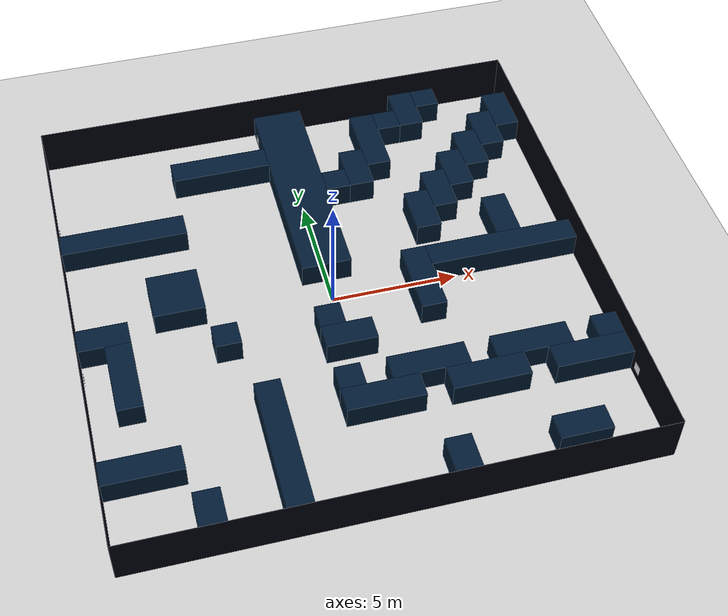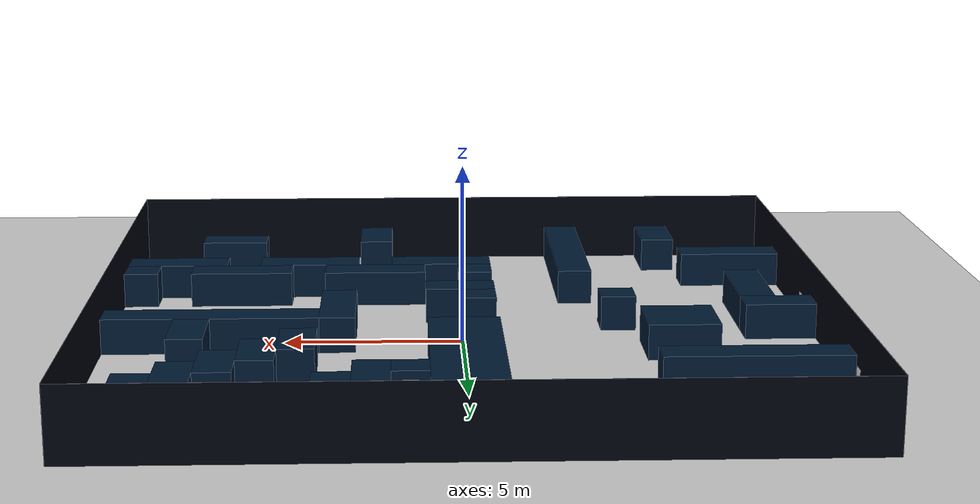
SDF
<?xml version="1.0"?>
<sdf version='1.8' xmlns:experimental="http://sdformat.org/schemas/1.7/experimental">
    <world name='april_maze'>
        <physics name='1ms' type='ignored'>
            <max_step_size>0.003</max_step_size>
            <real_time_factor>1</real_time_factor>
            <real_time_update_rate>1000</real_time_update_rate>
        </physics>

        <plugin name="gz::sim::systems::Physics" filename="gz-sim-physics-system" />
        <plugin name="gz::sim::systems::UserCommands" filename="gz-sim-user-commands-system" />
        <plugin name="gz::sim::systems::SceneBroadcaster" filename="gz-sim-scene-broadcaster-system" />
        <plugin name="gz::sim::systems::Contact" filename="gz-sim-contact-system" />

        <light name='sun' type='directional'>
            <cast_shadows>1</cast_shadows>
            <pose>0 0 10 0 -0 0</pose>
            <diffuse>0.8 0.8 0.8 1</diffuse>
            <specular>0.2 0.2 0.2 1</specular>
            <attenuation>
                <range>1000</range>
                <constant>0.90000000000000002</constant>
                <linear>0.01</linear>
                <quadratic>0.001</quadratic>
            </attenuation>
            <direction>-0.5 0.1 -0.9</direction>
            <spot>
                <inner_angle>0</inner_angle>
                <outer_angle>0</outer_angle>
                <falloff>0</falloff>
            </spot>
        </light>
        <gravity>0 0 -9.8</gravity>
        <magnetic_field>6e-06 2.3e-05 -4.2e-05</magnetic_field>
        <atmosphere type='adiabatic' />
        <scene>
            <ambient>0.4 0.4 0.4 1</ambient>
            <background>0.7 0.7 0.7 1</background>
            <shadows>1</shadows>
        </scene>
        <include>
            <name>ground_plane</name>
            <uri>model://ground_plane</uri>
        </include>

        <include>
            <name>maze</name>
            <uri>model://maze</uri>
        </include>

        <!-- AprilTag panels via parameterized includes -->
        <include>
          <name>tag36_11_00000</name>
          <uri>model://apriltag_panel</uri>
          <pose>-9.94 -2 0.6 0 -1.5708 -3.141</pose>
          <experimental:params>
            <visual element_id="panel::front_vis" action="modify">
              <material>
                <pbr>
                  <metal>
                    <albedo_map>textures/apriltags/tag36_11_00000.png</albedo_map>
                  </metal>
                </pbr>
              </material>
            </visual>
          </experimental:params>
        </include>

        <include>
          <name>tag36_11_00001</name>
          <uri>model://apriltag_panel</uri>
          <pose>-9.94 5.5 0.6 0 -1.5708 3.141</pose>
          <experimental:params>
            <visual element_id="panel::front_vis" action="modify">
              <material>
                <pbr>
                  <metal>
                    <albedo_map>textures/apriltags/tag36_11_00001.png</albedo_map>
                  </metal>
                </pbr>
              </material>
            </visual>
          </experimental:params>
        </include>

        <include>
          <name>tag36_11_00002</name>
          <uri>model://apriltag_panel</uri>
          <pose>9.94 -6.5 0.6 0 1.5708 3.141</pose>
          <experimental:params>
            <visual element_id="panel::front_vis" action="modify">
              <material>
                <pbr>
                  <metal>
                    <albedo_map>textures/apriltags/tag36_11_00002.png</albedo_map>
                  </metal>
                </pbr>
              </material>
            </visual>
          </experimental:params>
        </include>

        <include>
          <name>tag36_11_00003</name>
          <uri>model://apriltag_panel</uri>
          <pose>7.05 9.5 0.6 0 1.5708 0.0</pose>
          <experimental:params>
            <visual element_id="panel::front_vis" action="modify">
              <material>
                <pbr>
                  <metal>
                    <albedo_map>textures/apriltags/tag36_11_00003.png</albedo_map>
                  </metal>
                </pbr>
              </material>
            </visual>
          </experimental:params>
        </include>

        <include>
          <name>tag36_11_00004</name>
          <uri>model://apriltag_panel</uri>
          <pose>1.50 6.10 0.6 0 1.5708 1.5708</pose>
          <experimental:params>
            <visual element_id="panel::front_vis" action="modify">
              <material>
                <pbr>
                  <metal>
                    <albedo_map>textures/apriltags/tag36_11_00004.png</albedo_map>
                  </metal>
                </pbr>
              </material>
            </visual>
          </experimental:params>
        </include>

        <include>
          <name>tag36_11_00005</name>
          <uri>model://apriltag_panel</uri>
          <pose>-1.06 9 0.6 0 -1.5708 0</pose>
          <experimental:params>
            <visual element_id="panel::front_vis" action="modify">
              <material>
                <pbr>
                  <metal>
                    <albedo_map>textures/apriltags/tag36_11_00005.png</albedo_map>
                  </metal>
                </pbr>
              </material>
            </visual>
          </experimental:params>
        </include>

    </world>
</sdf>

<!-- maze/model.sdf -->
<sdf version='1.8'>
  <model name='maze'>
    <static>true</static>

    <!-- Border walls (z offset 1.0 to place base at ground) -->
    <link name='border_wall1'>
      <pose>-10.005 0 1 0 0 0</pose>
      <collision name='border_wall1_collision'>
        <geometry>
          <box>
            <size>0.01 20 2</size>
          </box>
        </geometry>
      </collision>
      <visual name='border_wall1_visual'>
        <geometry>
          <box>
            <size>0.01 20 2</size>
          </box>
        </geometry>
        <material>
          <ambient>0.1 0.1 0.1 1</ambient>
          <diffuse>0 0.01 0.05 1</diffuse>
          <specular>0 0.01 0.05 1</specular>
        </material>
      </visual>
    </link>

    <link name='border_wall2'>
      <pose>10.005 0 1 0 0 0</pose>
      <collision name='border_wall2_collision'>
        <geometry>
          <box>
            <size>0.01 20 2</size>
          </box>
        </geometry>
      </collision>
      <visual name='border_wall2_visual'>
        <geometry>
          <box>
            <size>0.01 20 2</size>
          </box>
        </geometry>
        <material>
          <ambient>0.1 0.1 0.1 1</ambient>
          <diffuse>0 0.01 0.05 1</diffuse>
          <specular>0 0.01 0.05 1</specular>
        </material>
      </visual>
    </link>

    <link name='border_wall3'>
      <pose>0 10.005 1 0 0 0</pose>
      <collision name='border_wall3_collision'>
        <geometry>
          <box>
            <size>20 0.01 2</size>
          </box>
        </geometry>
      </collision>
      <visual name='border_wall3_visual'>
        <geometry>
          <box>
            <size>20 0.01 2</size>
          </box>
        </geometry>
        <material>
          <ambient>0.1 0.1 0.1 1</ambient>
          <diffuse>0 0.01 0.05 1</diffuse>
          <specular>0 0.01 0.05 1</specular>
        </material>
      </visual>
    </link>

    <link name='border_wall4'>
      <pose>0 -10.005 1 0 0 0</pose>
      <collision name='border_wall4_collision'>
        <geometry>
          <box>
            <size>20 0.01 2</size>
          </box>
        </geometry>
      </collision>
      <visual name='border_wall4_visual'>
        <geometry>
          <box>
            <size>20 0.01 2</size>
          </box>
        </geometry>
        <material>
          <ambient>0.1 0.1 0.1 1</ambient>
          <diffuse>0 0.01 0.05 1</diffuse>
          <specular>0 0.01 0.05 1</specular>
        </material>
      </visual>
    </link>

    <!-- Obstacles (z offset 0.5 to place base at ground) -->
    <link name='wall1'>
      <pose>-6.5 -9 0.5 0 0 0</pose>
      <collision name='wall1_collision'>
        <geometry>
          <box>
            <size>1 2 1</size>
          </box>
        </geometry>
      </collision>
      <visual name='wall1_visual'>
        <geometry>
          <box>
            <size>1 2 1</size>
          </box>
        </geometry>
        <material>
          <ambient>0.1 0.1 0.1 1</ambient>
          <diffuse>0 0.1 0.2 1</diffuse>
          <specular>0 0.01 0.05 1</specular>
        </material>
      </visual>
    </link>

    <link name='wall2'>
      <pose>-8.5 -6.5 0.5 0 0 0</pose>
      <collision name='wall2_collision'>
        <geometry>
          <box>
            <size>3 1 1</size>
          </box>
        </geometry>
      </collision>
      <visual name='wall2_visual'>
        <geometry>
          <box>
            <size>3 1 1</size>
          </box>
        </geometry>
        <material>
          <ambient>0.1 0.1 0.1 1</ambient>
          <diffuse>0 0.1 0.2 1</diffuse>
          <specular>0 0.01 0.05 1</specular>
        </material>
      </visual>
    </link>

    <link name='wall3'>
      <pose>-3.5 -7 0.5 0 0 0</pose>
      <collision name='wall3_collision'>
        <geometry>
          <box>
            <size>1 6 1</size>
          </box>
        </geometry>
      </collision>
      <visual name='wall3_visual'>
        <geometry>
          <box>
            <size>1 6 1</size>
          </box>
        </geometry>
      <material>
          <ambient>0.1 0.1 0.1 1</ambient>
          <diffuse>0 0.1 0.2 1</diffuse>
          <specular>0 0.01 0.05 1</specular>
        </material>
      </visual>
    </link>

    <link name='wall4'>
      <pose>2.5 -9 0.5 0 0 0</pose>
      <collision name='wall4_collision'>
        <geometry>
          <box>
            <size>1 2 1</size>
          </box>
        </geometry>
      </collision>
      <visual name='wall4_visual'>
        <geometry>
          <box>
            <size>1 2 1</size>
          </box>
        </geometry>
        <material>
          <ambient>0.1 0.1 0.1 1</ambient>
          <diffuse>0 0.1 0.2 1</diffuse>
          <specular>0 0.01 0.05 1</specular>
        </material>
      </visual>
    </link>

    <link name='wall5'>
      <pose>7 -8.5 0.5 0 0 0</pose>
      <collision name='wall5_collision'>
        <geometry>
          <box>
            <size>2 1 1</size>
          </box>
        </geometry>
      </collision>
      <visual name='wall5_visual'>
        <geometry>
          <box>
            <size>2 1 1</size>
          </box>
        </geometry>
        <material>
          <ambient>0.1 0.1 0.1 1</ambient>
          <diffuse>0 0.1 0.2 1</diffuse>
          <specular>0 0.01 0.05 1</specular>
        </material>
      </visual>
    </link>

    <link name='wall6'>
      <pose>-9 -0.5 0.5 0 0 0</pose>
      <collision name='wall6_collision'>
        <geometry>
          <box>
            <size>2 1 1</size>
          </box>
        </geometry>
      </collision>
      <visual name='wall6_visual'>
        <geometry>
          <box>
            <size>2 1 1</size>
          </box>
        </geometry>
        <material>
          <ambient>0.1 0.1 0.1 1</ambient>
          <diffuse>0 0.1 0.2 1</diffuse>
          <specular>0 0.01 0.05 1</specular>
        </material>
      </visual>
    </link>

    <link name='wall7'>
      <pose>-8.5 -2.5 0.5 0 0 0</pose>
      <collision name='wall7_collision'>
        <geometry>
          <box>
            <size>1 3 1</size>
          </box>
        </geometry>
      </collision>
      <visual name='wall7_visual'>
        <geometry>
          <box>
            <size>1 3 1</size>
          </box>
        </geometry>
        <material>
          <ambient>0.1 0.1 0.1 1</ambient>
          <diffuse>0 0.1 0.2 1</diffuse>
          <specular>0 0.01 0.05 1</specular>
        </material>
      </visual>
    </link>

    <link name='wall8'>
      <pose>-4.5 -1.5 0.5 0 0 0</pose>
      <collision name='wall8_collision'>
        <geometry>
          <box>
            <size>1 1 1</size>
          </box>
        </geometry>
      </collision>
      <visual name='wall8_visual'>
        <geometry>
          <box>
            <size>1 1 1</size>
          </box>
        </geometry>
        <material>
          <ambient>0.1 0.1 0.1 1</ambient>
          <diffuse>0 0.1 0.2 1</diffuse>
          <specular>0 0.01 0.05 1</specular>
        </material>
      </visual>
    </link>

    <link name='wall9'>
      <pose>-6 1 0.5 0 0 0</pose>
      <collision name='wall9_collision'>
        <geometry>
          <box>
            <size>2 2 1</size>
          </box>
        </geometry>
      </collision>
      <visual name='wall9_visual'>
        <geometry>
          <box>
            <size>2 2 1</size>
          </box>
        </geometry>
        <material>
          <ambient>0.1 0.1 0.1 1</ambient>
          <diffuse>0 0.1 0.2 1</diffuse>
          <specular>0 0.01 0.05 1</specular>
        </material>
      </visual>
    </link>

    <link name='wall10'>
      <pose>-7.5 4.5 0.5 0 0 0</pose>
      <collision name='wall10_collision'>
        <geometry>
          <box>
            <size>5 1 1</size>
          </box>
        </geometry>
      </collision>
      <visual name='wall10_visual'>
        <geometry>
          <box>
            <size>5 1 1</size>
          </box>
        </geometry>
        <material>
          <ambient>0.1 0.1 0.1 1</ambient>
          <diffuse>0 0.1 0.2 1</diffuse>
          <specular>0 0.01 0.05 1</specular>
        </material>
      </visual>
    </link>

    <link name='wall11'>
      <pose>-3 7.5 0.5 0 0 0</pose>
      <collision name='wall11_collision'>
        <geometry>
          <box>
            <size>4 1 1</size>
          </box>
        </geometry>
      </collision>
      <visual name='wall11_visual'>
        <geometry>
          <box>
            <size>4 1 1</size>
          </box>
        </geometry>
        <material>
          <ambient>0.1 0.1 0.1 1</ambient>
          <diffuse>0 0.1 0.2 1</diffuse>
          <specular>0 0.01 0.05 1</specular>
        </material>
      </visual>
    </link>

    <link name='wall12'>
      <pose>0 5.5 0.5 0 0 0</pose>
      <collision name='wall12_collision'>
        <geometry>
          <box>
            <size>2 9 1</size>
          </box>
        </geometry>
      </collision>
      <visual name='wall12_visual'>
        <geometry>
          <box>
            <size>2 9 1</size>
          </box>
        </geometry>
        <material>
          <ambient>0.1 0.1 0.1 1</ambient>
          <diffuse>0 0.1 0.2 1</diffuse>
          <specular>0 0.01 0.05 1</specular>
        </material>
      </visual>
    </link>

    <link name='wall13'>
      <pose>0 -2.5 0.5 0 0 0</pose>
      <collision name='wall13_collision'>
        <geometry>
          <box>
            <size>2 1 1</size>
          </box>
        </geometry>
      </collision>
      <visual name='wall13_visual'>
        <geometry>
          <box>
            <size>2 1 1</size>
          </box>
        </geometry>
        <material>
          <ambient>0.1 0.1 0.1 1</ambient>
          <diffuse>0 0.1 0.2 1</diffuse>
          <specular>0 0.01 0.05 1</specular>
        </material>
      </visual>
    </link>

    <link name='wall14'>
      <pose>-0.5 -1.5 0.5 0 0 0</pose>
      <collision name='wall14_collision'>
        <geometry>
          <box>
            <size>1 1 1</size>
          </box>
        </geometry>
      </collision>
      <visual name='wall14_visual'>
        <geometry>
          <box>
            <size>1 1 1</size>
          </box>
        </geometry>
        <material>
          <ambient>0.1 0.1 0.1 1</ambient>
          <diffuse>0 0.1 0.2 1</diffuse>
          <specular>0 0.01 0.05 1</specular>
        </material>
      </visual>
    </link>

    <link name='wall15'>
      <pose>-0.5 -4.5 0.5 0 0 0</pose>
      <collision name='wall15_collision'>
        <geometry>
          <box>
            <size>1 1 1</size>
          </box>
        </geometry>
      </collision>
      <visual name='wall15_visual'>
        <geometry>
          <box>
            <size>1 1 1</size>
          </box>
        </geometry>
        <material>
          <ambient>0.1 0.1 0.1 1</ambient>
          <diffuse>0 0.1 0.2 1</diffuse>
          <specular>0 0.01 0.05 1</specular>
        </material>
      </visual>
    </link>

    <link name='wall16'>
      <pose>0.5 -5.5 0.5 0 0 0</pose>
      <collision name='wall16_collision'>
        <geometry>
          <box>
            <size>3 1 1</size>
          </box>
        </geometry>
      </collision>
      <visual name='wall16_visual'>
        <geometry>
          <box>
            <size>3 1 1</size>
          </box>
        </geometry>
        <material>
          <ambient>0.1 0.1 0.1 1</ambient>
          <diffuse>0 0.1 0.2 1</diffuse>
          <specular>0 0.01 0.05 1</specular>
        </material>
      </visual>
    </link>

    <link name='wall17'>
      <pose>2.5 -4.5 0.5 0 0 0</pose>
      <collision name='wall17_collision'>
        <geometry>
          <box>
            <size>3 1 1</size>
          </box>
        </geometry>
      </collision>
      <visual name='wall17_visual'>
        <geometry>
          <box>
            <size>3 1 1</size>
          </box>
        </geometry>
        <material>
          <ambient>0.1 0.1 0.1 1</ambient>
          <diffuse>0 0.1 0.2 1</diffuse>
          <specular>0 0.01 0.05 1</specular>
        </material>
      </visual>
    </link>

    <link name='wall18'>
      <pose>4.5 -5.5 0.5 0 0 0</pose>
      <collision name='wall18_collision'>
        <geometry>
          <box>
            <size>3 1 1</size>
          </box>
        </geometry>
      </collision>
      <visual name='wall18_visual'>
        <geometry>
          <box>
            <size>3 1 1</size>
          </box>
        </geometry>
        <material>
          <ambient>0.1 0.1 0.1 1</ambient>
          <diffuse>0 0.1 0.2 1</diffuse>
          <specular>0 0.01 0.05 1</specular>
        </material>
      </visual>
    </link>

    <link name='wall19'>
      <pose>6.5 -4.5 0.5 0 0 0</pose>
      <collision name='wall19_collision'>
        <geometry>
          <box>
            <size>3 1 1</size>
          </box>
        </geometry>
      </collision>
      <visual name='wall19_visual'>
        <geometry>
          <box>
            <size>3 1 1</size>
          </box>
        </geometry>
        <material>
          <ambient>0.1 0.1 0.1 1</ambient>
          <diffuse>0 0.1 0.2 1</diffuse>
          <specular>0 0.01 0.05 1</specular>
        </material>
      </visual>
    </link>

    <link name='wall20'>
      <pose>8.5 -5.5 0.5 0 0 0</pose>
      <collision name='wall20_collision'>
        <geometry>
          <box>
            <size>3 1 1</size>
          </box>
        </geometry>
      </collision>
      <visual name='wall20_visual'>
        <geometry>
          <box>
            <size>3 1 1</size>
          </box>
        </geometry>
        <material>
          <ambient>0.1 0.1 0.1 1</ambient>
          <diffuse>0 0.1 0.2 1</diffuse>
          <specular>0 0.01 0.05 1</specular>
        </material>
      </visual>
    </link>

    <link name='wall21'>
      <pose>9.5 -4.5 0.5 0 0 0</pose>
      <collision name='wall21_collision'>
        <geometry>
          <box>
            <size>1 1 1</size>
          </box>
        </geometry>
      </collision>
      <visual name='wall21_visual'>
        <geometry>
          <box>
            <size>1 1 1</size>
          </box>
        </geometry>
        <material>
          <ambient>0.1 0.1 0.1 1</ambient>
          <diffuse>0 0.1 0.2 1</diffuse>
          <specular>0 0.01 0.05 1</specular>
        </material>
      </visual>
    </link>

    <link name='wall22'>
      <pose>3.5 -0.5 0.5 0 0 0</pose>
      <collision name='wall22_collision'>
        <geometry>
          <box>
            <size>1 3 1</size>
          </box>
        </geometry>
      </collision>
      <visual name='wall22_visual'>
        <geometry>
          <box>
            <size>1 3 1</size>
          </box>
        </geometry>
        <material>
          <ambient>0.1 0.1 0.1 1</ambient>
          <diffuse>0 0.1 0.2 1</diffuse>
          <specular>0 0.01 0.05 1</specular>
        </material>
      </visual>
    </link>

    <link name='wall23'>
      <pose>7 0.5 0.5 0 0 0</pose>
      <collision name='wall23_collision'>
        <geometry>
          <box>
            <size>6 1 1</size>
          </box>
        </geometry>
      </collision>
      <visual name='wall23_visual'>
        <geometry>
          <box>
            <size>6 1 1</size>
          </box>
        </geometry>
        <material>
          <ambient>0.1 0.1 0.1 1</ambient>
          <diffuse>0 0.1 0.2 1</diffuse>
          <specular>0 0.01 0.05 1</specular>
        </material>
      </visual>
    </link>

    <link name='wall24'>
      <pose>7.5 2 0.5 0 0 0</pose>
      <collision name='wall24_collision'>
        <geometry>
          <box>
            <size>1 2 1</size>
          </box>
        </geometry>
      </collision>
      <visual name='wall24_visual'>
        <geometry>
          <box>
            <size>1 2 1</size>
          </box>
        </geometry>
        <material>
          <ambient>0.1 0.1 0.1 1</ambient>
          <diffuse>0 0.1 0.2 1</diffuse>
          <specular>0 0.01 0.05 1</specular>
        </material>
      </visual>
    </link>

    <link name='wall25'>
      <pose>1.5 5.5 0.5 0 0 0</pose>
      <collision name='wall25_collision'>
        <geometry>
          <box>
            <size>1 1 1</size>
          </box>
        </geometry>
      </collision>
      <visual name='wall25_visual'>
        <geometry>
          <box>
            <size>1 1 1</size>
          </box>
        </geometry>
        <material>
          <ambient>0.1 0.1 0.1 1</ambient>
          <diffuse>0 0.1 0.2 1</diffuse>
          <specular>0 0.01 0.05 1</specular>
        </material>
      </visual>
    </link>

    <link name='wall26'>
      <pose>2.5 6 0.5 0 0 0</pose>
      <collision name='wall26_collision'>
        <geometry>
          <box>
            <size>1 2 1</size>
          </box>
        </geometry>
      </collision>
      <visual name='wall26_visual'>
        <geometry>
          <box>
            <size>1 2 1</size>
          </box>
        </geometry>
        <material>
          <ambient>0.1 0.1 0.1 1</ambient>
          <diffuse>0 0.1 0.2 1</diffuse>
          <specular>0 0.01 0.05 1</specular>
        </material>
      </visual>
    </link>

    <link name='wall27'>
      <pose>3.5 7.5 0.5 0 0 0</pose>
      <collision name='wall27_collision'>
        <geometry>
          <box>
            <size>1 3 1</size>
          </box>
        </geometry>
      </collision>
      <visual name='wall27_visual'>
        <geometry>
          <box>
            <size>1 3 1</size>
          </box>
        </geometry>
        <material>
          <ambient>0.1 0.1 0.1 1</ambient>
          <diffuse>0 0.1 0.2 1</diffuse>
          <specular>0 0.01 0.05 1</specular>
        </material>
      </visual>
    </link>

    <link name='wall28'>
      <pose>4.5 8.5 0.5 0 0 0</pose>
      <collision name='wall28_collision'>
        <geometry>
          <box>
            <size>1 1 1</size>
          </box>
        </geometry>
      </collision>
      <visual name='wall28_visual'>
        <geometry>
          <box>
            <size>1 1 1</size>
          </box>
        </geometry>
        <material>
          <ambient>0.1 0.1 0.1 1</ambient>
          <diffuse>0 0.1 0.2 1</diffuse>
          <specular>0 0.01 0.05 1</specular>
        </material>
      </visual>
    </link>

    <link name='wall29'>
      <pose>5.5 9 0.5 0 0 0</pose>
      <collision name='wall29_collision'>
        <geometry>
          <box>
            <size>1 2 1</size>
          </box>
        </geometry>
      </collision>
      <visual name='wall29_visual'>
        <geometry>
          <box>
            <size>1 2 1</size>
          </box>
        </geometry>
        <material>
          <ambient>0.1 0.1 0.1 1</ambient>
          <diffuse>0 0.1 0.2 1</diffuse>
          <specular>0 0.01 0.05 1</specular>
        </material>
      </visual>
    </link>

    <link name='wall30'>
      <pose>6.5 9.5 0.5 0 0 0</pose>
      <collision name='wall30_collision'>
        <geometry>
          <box>
            <size>1 1 1</size>
          </box>
        </geometry>
      </collision>
      <visual name='wall30_visual'>
        <geometry>
          <box>
            <size>1 1 1</size>
          </box>
        </geometry>
        <material>
          <ambient>0.1 0.1 0.1 1</ambient>
          <diffuse>0 0.1 0.2 1</diffuse>
          <specular>0 0.01 0.05 1</specular>
        </material>
      </visual>
    </link>

    <link name='wall31'>
      <pose>4.5 3 0.5 0 0 0</pose>
      <collision name='wall31_collision'>
        <geometry>
          <box>
            <size>1 2 1</size>
          </box>
        </geometry>
      </collision>
      <visual name='wall31_visual'>
        <geometry>
          <box>
            <size>1 2 1</size>
          </box>
        </geometry>
        <material>
          <ambient>0.1 0.1 0.1 1</ambient>
          <diffuse>0 0.1 0.2 1</diffuse>
          <specular>0 0.01 0.05 1</specular>
        </material>
      </visual>
    </link>

    <link name='wall32'>
      <pose>5.5 4 0.5 0 0 0</pose>
      <collision name='wall32_collision'>
        <geometry>
          <box>
            <size>1 2 1</size>
          </box>
        </geometry>
      </collision>
      <visual name='wall32_visual'>
        <geometry>
          <box>
            <size>1 2 1</size>
          </box>
        </geometry>
        <material>
          <ambient>0.1 0.1 0.1 1</ambient>
          <diffuse>0 0.1 0.2 1</diffuse>
          <specular>0 0.01 0.05 1</specular>
        </material>
      </visual>
    </link>

    <link name='wall33'>
      <pose>6.5 5 0.5 0 0 0</pose>
      <collision name='wall33_collision'>
        <geometry>
          <box>
            <size>1 2 1</size>
          </box>
        </geometry>
      </collision>
      <visual name='wall33_visual'>
        <geometry>
          <box>
            <size>1 2 1</size>
          </box>
        </geometry>
        <material>
          <ambient>0.1 0.1 0.1 1</ambient>
          <diffuse>0 0.1 0.2 1</diffuse>
          <specular>0 0.01 0.05 1</specular>
        </material>
      </visual>
    </link>

    <link name='wall34'>
      <pose>7.5 6 0.5 0 0 0</pose>
      <collision name='wall34_collision'>
        <geometry>
          <box>
            <size>1 2 1</size>
          </box>
        </geometry>
      </collision>
      <visual name='wall34_visual'>
        <geometry>
          <box>
            <size>1 2 1</size>
          </box>
        </geometry>
        <material>
          <ambient>0.1 0.1 0.1 1</ambient>
          <diffuse>0 0.1 0.2 1</diffuse>
          <specular>0 0.01 0.05 1</specular>
        </material>
      </visual>
    </link>

    <link name='wall35'>
      <pose>8.5 7 0.5 0 0 0</pose>
      <collision name='wall35_collision'>
        <geometry>
          <box>
            <size>1 2 1</size>
          </box>
        </geometry>
      </collision>
      <visual name='wall35_visual'>
        <geometry>
          <box>
            <size>1 2 1</size>
          </box>
        </geometry>
        <material>
          <ambient>0.1 0.1 0.1 1</ambient>
          <diffuse>0 0.1 0.2 1</diffuse>
          <specular>0 0.01 0.05 1</specular>
        </material>
      </visual>
    </link>

    <link name='wall36'>
      <pose>9.5 8 0.5 0 0 0</pose>
      <collision name='wall36_collision'>
        <geometry>
          <box>
            <size>1 2 1</size>
          </box>
        </geometry>
      </collision>
      <visual name='wall36_visual'>
        <geometry>
          <box>
            <size>1 2 1</size>
          </box>
        </geometry>
        <material>
          <ambient>0.1 0.1 0.1 1</ambient>
          <diffuse>0 0.1 0.2 1</diffuse>
          <specular>0 0.01 0.05 1</specular>
        </material>
      </visual>
    </link>

  </model>
</sdf>

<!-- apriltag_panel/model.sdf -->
<sdf version='1.8'>
  <!-- Single rigid panel with small physical thickness to avoid z-fighting -->
  <model name='apriltag_panel'>
    <static>true</static>
    <link name='panel'>
      <inertial><mass>0.05</mass></inertial>
      <!-- Give the panel a bit of thickness -->
      <collision name='body_col'>
        <geometry>
          <box>
            <size>0.02 0.4 0.4</size>
          </box>
        </geometry>
      </collision>

      <!-- Front tag surface slightly in front of the body to avoid artifacts -->
      <visual name='front_vis'>
        <pose>0.011 0 0 0 0 0</pose>
        <cast_shadows>false</cast_shadows>
        <geometry>
          <plane>
            <size>0.4 0.4</size>
          </plane>
        </geometry>
        <material>
          <double_sided>false</double_sided>
          <transparency>0.0</transparency>
          <ambient>1 1 1 1</ambient>
          <diffuse>1 1 1 1</diffuse>
          <pbr>
            <metal>
              <albedo_map>textures/apriltags/tag36_11_00000.png</albedo_map>
              <metalness>0.0</metalness>
              <roughness>0.8</roughness>
            </metal>
          </pbr>
        </material>
      </visual>

    </link>
  </model>
</sdf>
